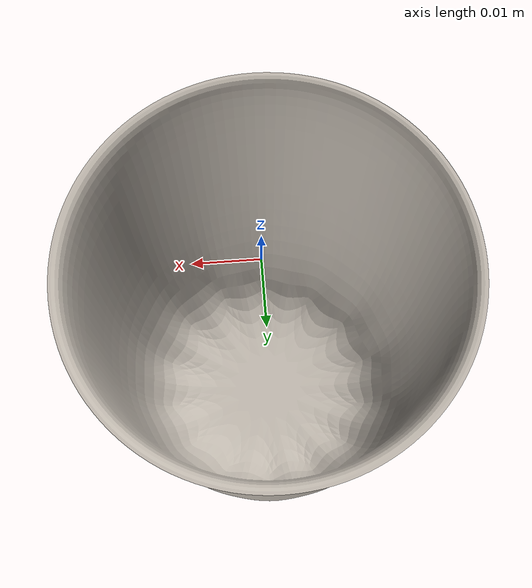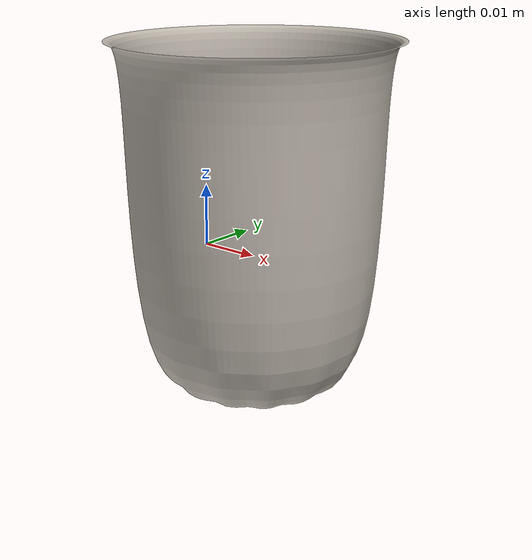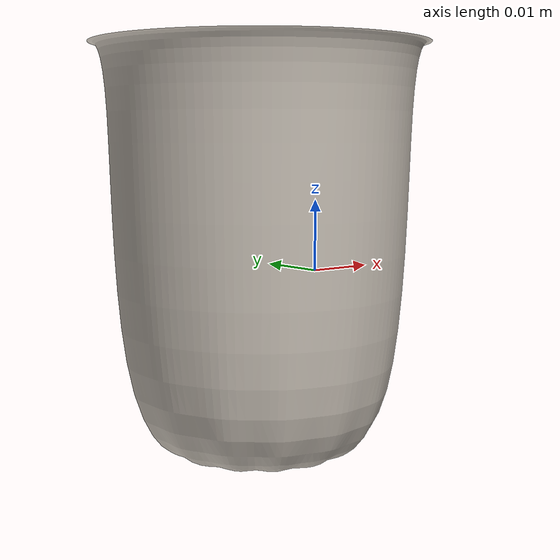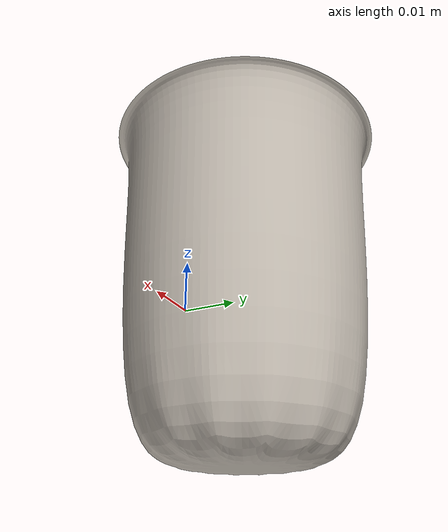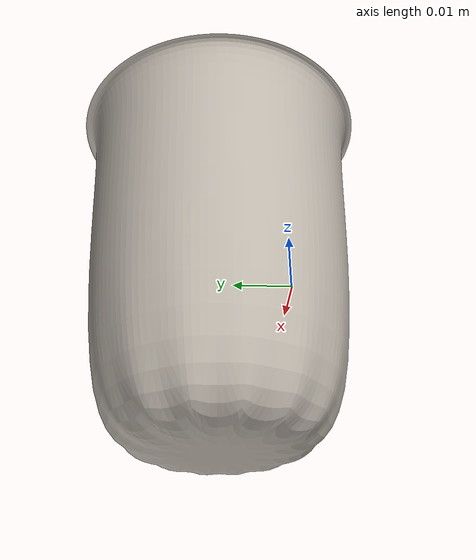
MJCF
<mujoco model="mug_4">
  <asset>
    <texture file="/home/abhiram03/Desktop/mimicgen/robosuite-kitchen/robosuite/models/assets/textures/ceramic.png" name="tex-mug_4" type="2d"/>
    <material name="mug_4" reflectance="0.5" texrepeat="1 1" texture="tex-mug_4" texuniform="false"/>
    <mesh file="visual/model_normalized_0.obj" name="model_normalized_0_vis" scale="0.07499999999999998 0.07499999999999998 0.07499999999999998" refquat="0.7071067811865475 0.0 0.0 -0.7071067811865475"/>
    <mesh file="collision/model_normalized_collision_13.obj" name="model_normalized_collision_13._coll" scale="0.07499999999999998 0.07499999999999998 0.07499999999999998" refquat="0.7071067811865475 0.0 0.0 -0.7071067811865475"/>
    <mesh file="collision/model_normalized_collision_15.obj" name="model_normalized_collision_15._coll" scale="0.07499999999999998 0.07499999999999998 0.07499999999999998" refquat="0.7071067811865475 0.0 0.0 -0.7071067811865475"/>
    <mesh file="collision/model_normalized_collision_10.obj" name="model_normalized_collision_10._coll" scale="0.07499999999999998 0.07499999999999998 0.07499999999999998" refquat="0.7071067811865475 0.0 0.0 -0.7071067811865475"/>
    <mesh file="collision/model_normalized_collision_26.obj" name="model_normalized_collision_26._coll" scale="0.07499999999999998 0.07499999999999998 0.07499999999999998" refquat="0.7071067811865475 0.0 0.0 -0.7071067811865475"/>
    <mesh file="collision/model_normalized_collision_25.obj" name="model_normalized_collision_25._coll" scale="0.07499999999999998 0.07499999999999998 0.07499999999999998" refquat="0.7071067811865475 0.0 0.0 -0.7071067811865475"/>
    <mesh file="collision/model_normalized_collision_5.obj" name="model_normalized_collision_5._coll" scale="0.07499999999999998 0.07499999999999998 0.07499999999999998" refquat="0.7071067811865475 0.0 0.0 -0.7071067811865475"/>
    <mesh file="collision/model_normalized_collision_31.obj" name="model_normalized_collision_31._coll" scale="0.07499999999999998 0.07499999999999998 0.07499999999999998" refquat="0.7071067811865475 0.0 0.0 -0.7071067811865475"/>
    <mesh file="collision/model_normalized_collision_3.obj" name="model_normalized_collision_3._coll" scale="0.07499999999999998 0.07499999999999998 0.07499999999999998" refquat="0.7071067811865475 0.0 0.0 -0.7071067811865475"/>
    <mesh file="collision/model_normalized_collision_14.obj" name="model_normalized_collision_14._coll" scale="0.07499999999999998 0.07499999999999998 0.07499999999999998" refquat="0.7071067811865475 0.0 0.0 -0.7071067811865475"/>
    <mesh file="collision/model_normalized_collision_28.obj" name="model_normalized_collision_28._coll" scale="0.07499999999999998 0.07499999999999998 0.07499999999999998" refquat="0.7071067811865475 0.0 0.0 -0.7071067811865475"/>
    <mesh file="collision/model_normalized_collision_11.obj" name="model_normalized_collision_11._coll" scale="0.07499999999999998 0.07499999999999998 0.07499999999999998" refquat="0.7071067811865475 0.0 0.0 -0.7071067811865475"/>
    <mesh file="collision/model_normalized_collision_29.obj" name="model_normalized_collision_29._coll" scale="0.07499999999999998 0.07499999999999998 0.07499999999999998" refquat="0.7071067811865475 0.0 0.0 -0.7071067811865475"/>
    <mesh file="collision/model_normalized_collision_24.obj" name="model_normalized_collision_24._coll" scale="0.07499999999999998 0.07499999999999998 0.07499999999999998" refquat="0.7071067811865475 0.0 0.0 -0.7071067811865475"/>
    <mesh file="collision/model_normalized_collision_1.obj" name="model_normalized_collision_1._coll" scale="0.07499999999999998 0.07499999999999998 0.07499999999999998" refquat="0.7071067811865475 0.0 0.0 -0.7071067811865475"/>
    <mesh file="collision/model_normalized_collision_0.obj" name="model_normalized_collision_0._coll" scale="0.07499999999999998 0.07499999999999998 0.07499999999999998" refquat="0.7071067811865475 0.0 0.0 -0.7071067811865475"/>
    <mesh file="collision/model_normalized_collision_27.obj" name="model_normalized_collision_27._coll" scale="0.07499999999999998 0.07499999999999998 0.07499999999999998" refquat="0.7071067811865475 0.0 0.0 -0.7071067811865475"/>
    <mesh file="collision/model_normalized_collision_9.obj" name="model_normalized_collision_9._coll" scale="0.07499999999999998 0.07499999999999998 0.07499999999999998" refquat="0.7071067811865475 0.0 0.0 -0.7071067811865475"/>
    <mesh file="collision/model_normalized_collision_19.obj" name="model_normalized_collision_19._coll" scale="0.07499999999999998 0.07499999999999998 0.07499999999999998" refquat="0.7071067811865475 0.0 0.0 -0.7071067811865475"/>
    <mesh file="collision/model_normalized_collision_21.obj" name="model_normalized_collision_21._coll" scale="0.07499999999999998 0.07499999999999998 0.07499999999999998" refquat="0.7071067811865475 0.0 0.0 -0.7071067811865475"/>
    <mesh file="collision/model_normalized_collision_30.obj" name="model_normalized_collision_30._coll" scale="0.07499999999999998 0.07499999999999998 0.07499999999999998" refquat="0.7071067811865475 0.0 0.0 -0.7071067811865475"/>
    <mesh file="collision/model_normalized_collision_20.obj" name="model_normalized_collision_20._coll" scale="0.07499999999999998 0.07499999999999998 0.07499999999999998" refquat="0.7071067811865475 0.0 0.0 -0.7071067811865475"/>
    <mesh file="collision/model_normalized_collision_2.obj" name="model_normalized_collision_2._coll" scale="0.07499999999999998 0.07499999999999998 0.07499999999999998" refquat="0.7071067811865475 0.0 0.0 -0.7071067811865475"/>
    <mesh file="collision/model_normalized_collision_7.obj" name="model_normalized_collision_7._coll" scale="0.07499999999999998 0.07499999999999998 0.07499999999999998" refquat="0.7071067811865475 0.0 0.0 -0.7071067811865475"/>
    <mesh file="collision/model_normalized_collision_22.obj" name="model_normalized_collision_22._coll" scale="0.07499999999999998 0.07499999999999998 0.07499999999999998" refquat="0.7071067811865475 0.0 0.0 -0.7071067811865475"/>
    <mesh file="collision/model_normalized_collision_16.obj" name="model_normalized_collision_16._coll" scale="0.07499999999999998 0.07499999999999998 0.07499999999999998" refquat="0.7071067811865475 0.0 0.0 -0.7071067811865475"/>
    <mesh file="collision/model_normalized_collision_8.obj" name="model_normalized_collision_8._coll" scale="0.07499999999999998 0.07499999999999998 0.07499999999999998" refquat="0.7071067811865475 0.0 0.0 -0.7071067811865475"/>
    <mesh file="collision/model_normalized_collision_6.obj" name="model_normalized_collision_6._coll" scale="0.07499999999999998 0.07499999999999998 0.07499999999999998" refquat="0.7071067811865475 0.0 0.0 -0.7071067811865475"/>
    <mesh file="collision/model_normalized_collision_18.obj" name="model_normalized_collision_18._coll" scale="0.07499999999999998 0.07499999999999998 0.07499999999999998" refquat="0.7071067811865475 0.0 0.0 -0.7071067811865475"/>
    <mesh file="collision/model_normalized_collision_17.obj" name="model_normalized_collision_17._coll" scale="0.07499999999999998 0.07499999999999998 0.07499999999999998" refquat="0.7071067811865475 0.0 0.0 -0.7071067811865475"/>
    <mesh file="collision/model_normalized_collision_12.obj" name="model_normalized_collision_12._coll" scale="0.07499999999999998 0.07499999999999998 0.07499999999999998" refquat="0.7071067811865475 0.0 0.0 -0.7071067811865475"/>
    <mesh file="collision/model_normalized_collision_4.obj" name="model_normalized_collision_4._coll" scale="0.07499999999999998 0.07499999999999998 0.07499999999999998" refquat="0.7071067811865475 0.0 0.0 -0.7071067811865475"/>
    <mesh file="collision/model_normalized_collision_23.obj" name="model_normalized_collision_23._coll" scale="0.07499999999999998 0.07499999999999998 0.07499999999999998" refquat="0.7071067811865475 0.0 0.0 -0.7071067811865475"/>
    <texture type="2d" name="9be6e36e9bff_mug__3d_asset_0_glb_texture_kd" file="visual/9be6e36e9bff_mug__3d_asset_0_glb_texture_kd.png"/>
    <material name="Material_0" texture="9be6e36e9bff_mug__3d_asset_0_glb_texture_kd" specular="0.5" shininess="0.5"/>
  </asset>
  <worldbody>
    <body>
      <body name="object">
        <geom solimp="0.998 0.998 0.001" solref="0.001 1" density="100" friction="0.95 0.3 0.1" type="mesh" mesh="model_normalized_0_vis" conaffinity="0" contype="0" group="1" material="Material_0"/>
        <geom solimp="0.998 0.998 0.001" solref="0.001 1" density="100" friction="0.95 0.3 0.1" type="mesh" mesh="model_normalized_collision_13._coll" group="0" rgba="0.8 0.8 0.8 0.0"/>
        <geom solimp="0.998 0.998 0.001" solref="0.001 1" density="100" friction="0.95 0.3 0.1" type="mesh" mesh="model_normalized_collision_15._coll" group="0" rgba="0.8 0.8 0.8 0.0"/>
        <geom solimp="0.998 0.998 0.001" solref="0.001 1" density="100" friction="0.95 0.3 0.1" type="mesh" mesh="model_normalized_collision_10._coll" group="0" rgba="0.8 0.8 0.8 0.0"/>
        <geom solimp="0.998 0.998 0.001" solref="0.001 1" density="100" friction="0.95 0.3 0.1" type="mesh" mesh="model_normalized_collision_26._coll" group="0" rgba="0.8 0.8 0.8 0.0"/>
        <geom solimp="0.998 0.998 0.001" solref="0.001 1" density="100" friction="0.95 0.3 0.1" type="mesh" mesh="model_normalized_collision_25._coll" group="0" rgba="0.8 0.8 0.8 0.0"/>
        <geom solimp="0.998 0.998 0.001" solref="0.001 1" density="100" friction="0.95 0.3 0.1" type="mesh" mesh="model_normalized_collision_5._coll" group="0" rgba="0.8 0.8 0.8 0.0"/>
        <geom solimp="0.998 0.998 0.001" solref="0.001 1" density="100" friction="0.95 0.3 0.1" type="mesh" mesh="model_normalized_collision_31._coll" group="0" rgba="0.8 0.8 0.8 0.0"/>
        <geom solimp="0.998 0.998 0.001" solref="0.001 1" density="100" friction="0.95 0.3 0.1" type="mesh" mesh="model_normalized_collision_3._coll" group="0" rgba="0.8 0.8 0.8 0.0"/>
        <geom solimp="0.998 0.998 0.001" solref="0.001 1" density="100" friction="0.95 0.3 0.1" type="mesh" mesh="model_normalized_collision_14._coll" group="0" rgba="0.8 0.8 0.8 0.0"/>
        <geom solimp="0.998 0.998 0.001" solref="0.001 1" density="100" friction="0.95 0.3 0.1" type="mesh" mesh="model_normalized_collision_28._coll" group="0" rgba="0.8 0.8 0.8 0.0"/>
        <geom solimp="0.998 0.998 0.001" solref="0.001 1" density="100" friction="0.95 0.3 0.1" type="mesh" mesh="model_normalized_collision_11._coll" group="0" rgba="0.8 0.8 0.8 0.0"/>
        <geom solimp="0.998 0.998 0.001" solref="0.001 1" density="100" friction="0.95 0.3 0.1" type="mesh" mesh="model_normalized_collision_29._coll" group="0" rgba="0.8 0.8 0.8 0.0"/>
        <geom solimp="0.998 0.998 0.001" solref="0.001 1" density="100" friction="0.95 0.3 0.1" type="mesh" mesh="model_normalized_collision_24._coll" group="0" rgba="0.8 0.8 0.8 0.0"/>
        <geom solimp="0.998 0.998 0.001" solref="0.001 1" density="100" friction="0.95 0.3 0.1" type="mesh" mesh="model_normalized_collision_1._coll" group="0" rgba="0.8 0.8 0.8 0.0"/>
        <geom solimp="0.998 0.998 0.001" solref="0.001 1" density="100" friction="0.95 0.3 0.1" type="mesh" mesh="model_normalized_collision_0._coll" group="0" rgba="0.8 0.8 0.8 0.0"/>
        <geom solimp="0.998 0.998 0.001" solref="0.001 1" density="100" friction="0.95 0.3 0.1" type="mesh" mesh="model_normalized_collision_27._coll" group="0" rgba="0.8 0.8 0.8 0.0"/>
        <geom solimp="0.998 0.998 0.001" solref="0.001 1" density="100" friction="0.95 0.3 0.1" type="mesh" mesh="model_normalized_collision_9._coll" group="0" rgba="0.8 0.8 0.8 0.0"/>
        <geom solimp="0.998 0.998 0.001" solref="0.001 1" density="100" friction="0.95 0.3 0.1" type="mesh" mesh="model_normalized_collision_19._coll" group="0" rgba="0.8 0.8 0.8 0.0"/>
        <geom solimp="0.998 0.998 0.001" solref="0.001 1" density="100" friction="0.95 0.3 0.1" type="mesh" mesh="model_normalized_collision_21._coll" group="0" rgba="0.8 0.8 0.8 0.0"/>
        <geom solimp="0.998 0.998 0.001" solref="0.001 1" density="100" friction="0.95 0.3 0.1" type="mesh" mesh="model_normalized_collision_30._coll" group="0" rgba="0.8 0.8 0.8 0.0"/>
        <geom solimp="0.998 0.998 0.001" solref="0.001 1" density="100" friction="0.95 0.3 0.1" type="mesh" mesh="model_normalized_collision_20._coll" group="0" rgba="0.8 0.8 0.8 0.0"/>
        <geom solimp="0.998 0.998 0.001" solref="0.001 1" density="100" friction="0.95 0.3 0.1" type="mesh" mesh="model_normalized_collision_2._coll" group="0" rgba="0.8 0.8 0.8 0.0"/>
        <geom solimp="0.998 0.998 0.001" solref="0.001 1" density="100" friction="0.95 0.3 0.1" type="mesh" mesh="model_normalized_collision_7._coll" group="0" rgba="0.8 0.8 0.8 0.0"/>
        <geom solimp="0.998 0.998 0.001" solref="0.001 1" density="100" friction="0.95 0.3 0.1" type="mesh" mesh="model_normalized_collision_22._coll" group="0" rgba="0.8 0.8 0.8 0.0"/>
        <geom solimp="0.998 0.998 0.001" solref="0.001 1" density="100" friction="0.95 0.3 0.1" type="mesh" mesh="model_normalized_collision_16._coll" group="0" rgba="0.8 0.8 0.8 0.0"/>
        <geom solimp="0.998 0.998 0.001" solref="0.001 1" density="100" friction="0.95 0.3 0.1" type="mesh" mesh="model_normalized_collision_8._coll" group="0" rgba="0.8 0.8 0.8 0.0"/>
        <geom solimp="0.998 0.998 0.001" solref="0.001 1" density="100" friction="0.95 0.3 0.1" type="mesh" mesh="model_normalized_collision_6._coll" group="0" rgba="0.8 0.8 0.8 0.0"/>
        <geom solimp="0.998 0.998 0.001" solref="0.001 1" density="100" friction="0.95 0.3 0.1" type="mesh" mesh="model_normalized_collision_18._coll" group="0" rgba="0.8 0.8 0.8 0.0"/>
        <geom solimp="0.998 0.998 0.001" solref="0.001 1" density="100" friction="0.95 0.3 0.1" type="mesh" mesh="model_normalized_collision_17._coll" group="0" rgba="0.8 0.8 0.8 0.0"/>
        <geom solimp="0.998 0.998 0.001" solref="0.001 1" density="100" friction="0.95 0.3 0.1" type="mesh" mesh="model_normalized_collision_12._coll" group="0" rgba="0.8 0.8 0.8 0.0"/>
        <geom solimp="0.998 0.998 0.001" solref="0.001 1" density="100" friction="0.95 0.3 0.1" type="mesh" mesh="model_normalized_collision_4._coll" group="0" rgba="0.8 0.8 0.8 0.0"/>
        <geom solimp="0.998 0.998 0.001" solref="0.001 1" density="100" friction="0.95 0.3 0.1" type="mesh" mesh="model_normalized_collision_23._coll" group="0" rgba="0.8 0.8 0.8 0.0"/>
      </body>
      <site rgba="0 0 0 0" size="0.005" pos="3.7500000188428466e-10 -0.00013349137500000063 -0.030429920249999992" name="bottom_site"/>
      <site rgba="0 0 0 0" size="0.005" pos="3.7500000188428466e-10 -0.00013349137500000063 0.03093371624999999" name="top_site"/>
      <site rgba="0 0 0 0" size="0.005" pos="0.038068181999999985 0.027139235999999987 0.00025189799999999964" name="horizontal_radius_site"/>
    </body>
  </worldbody>
</mujoco>
